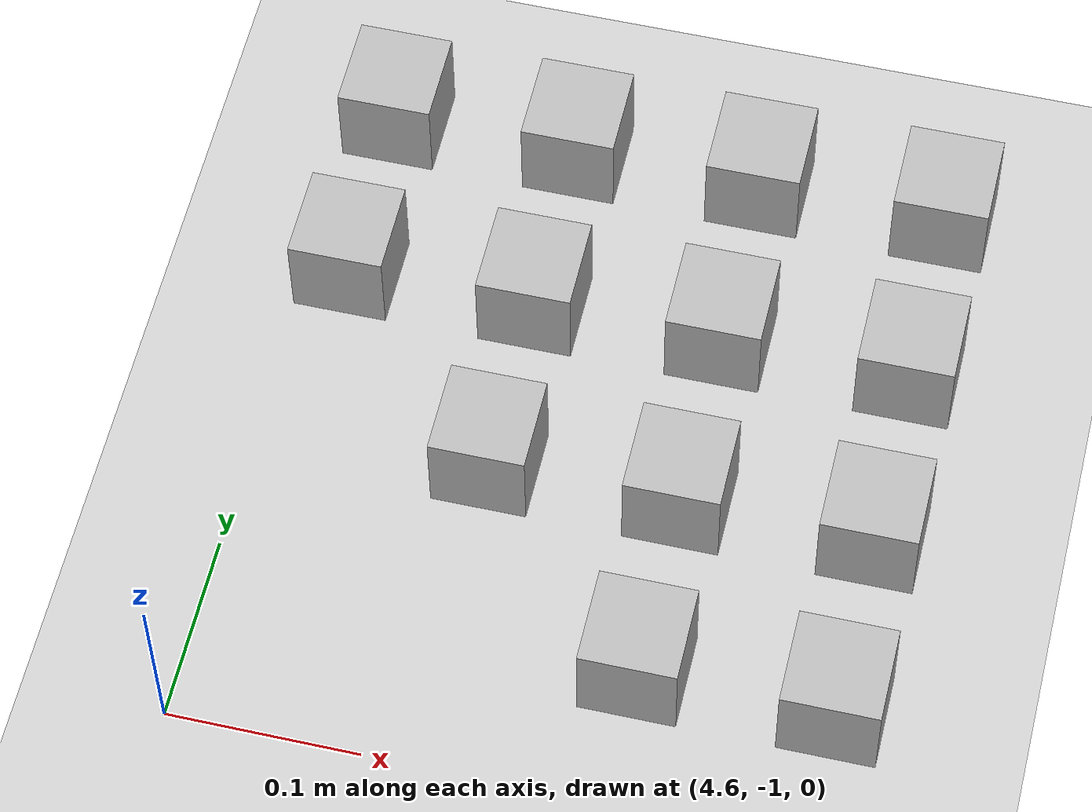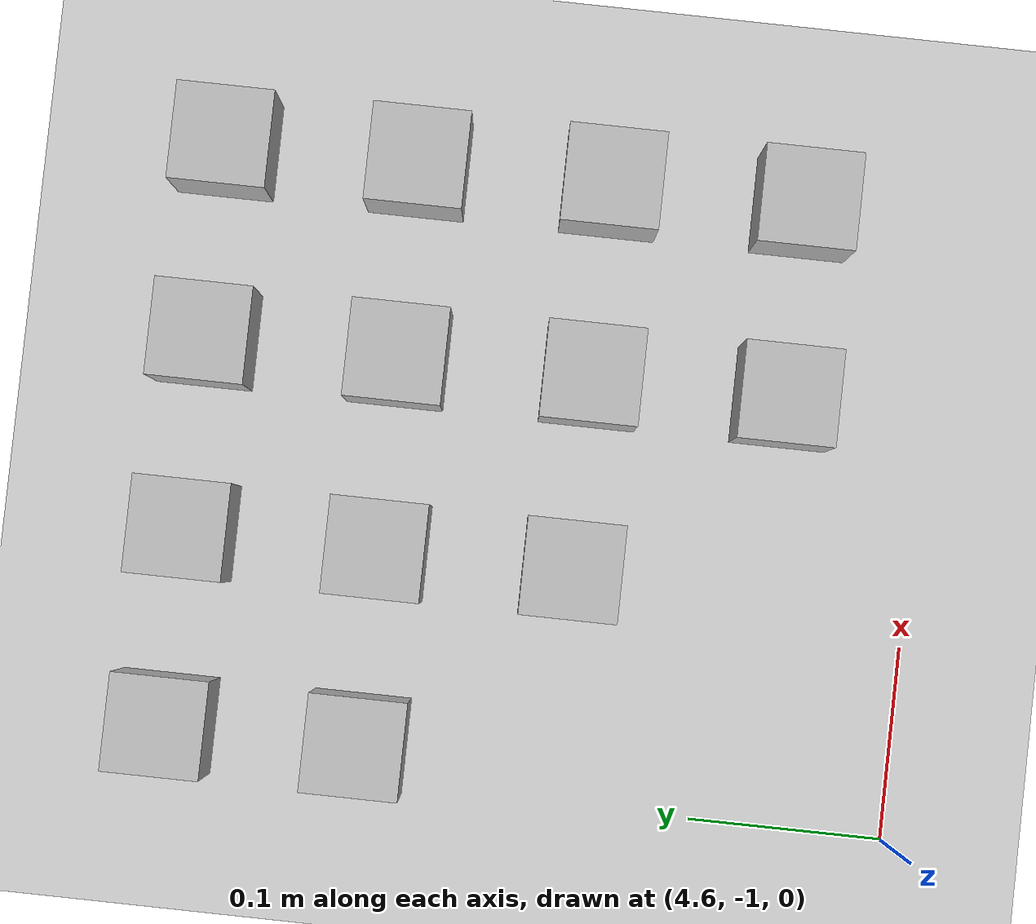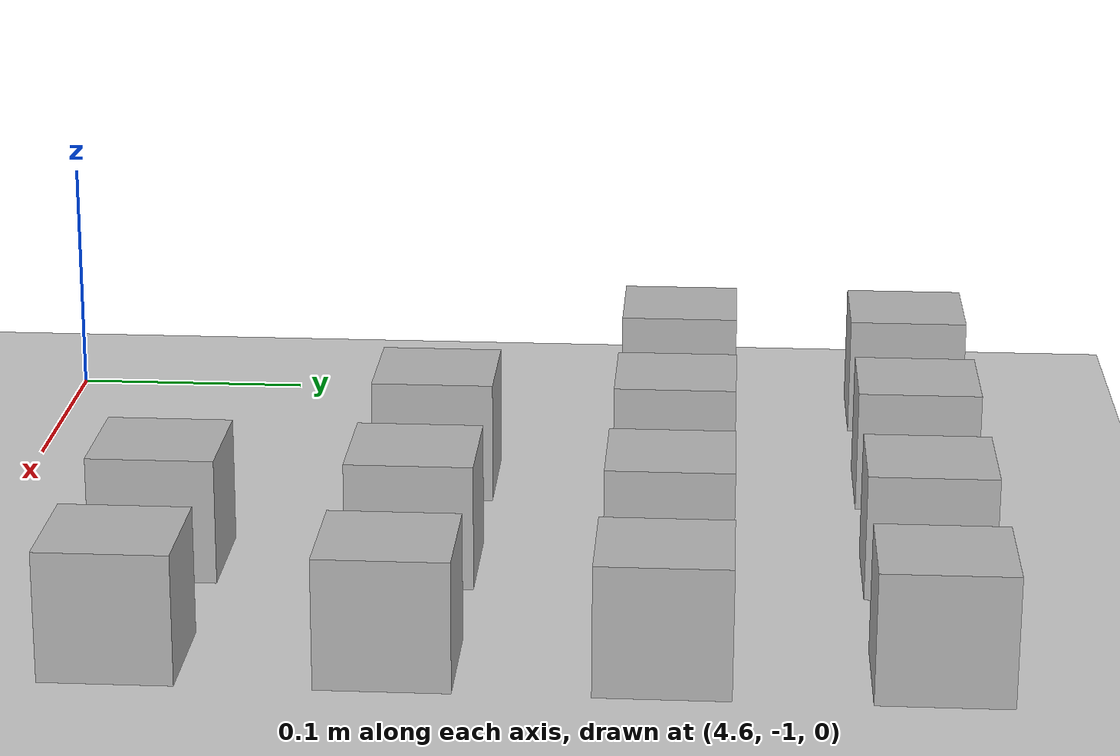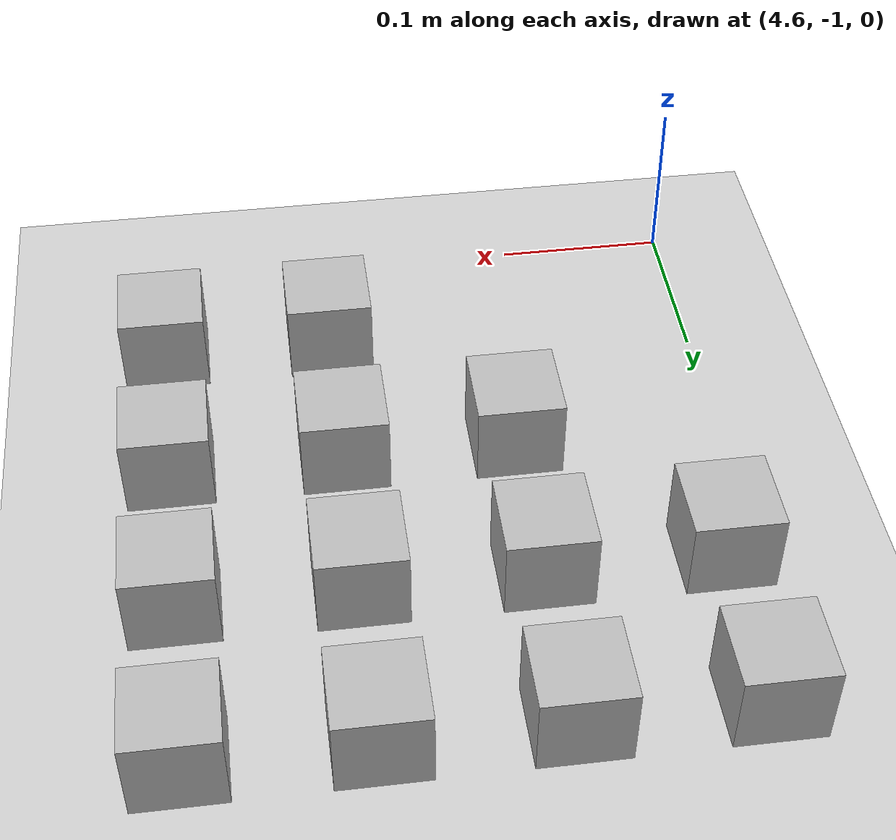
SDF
<sdf version="1.6">
 <world name="default">
  <model name="ground_plane">
   <static>1</static>
   <link name="link">
    <collision name="collision">
     <geometry><plane><normal>0 0 1</normal><size>100 100</size></plane></geometry>
     <surface><friction><ode><mu>100</mu><mu2>50</mu2></ode></friction></surface>
    </collision>
    <visual name="visual">
     <cast_shadows>0</cast_shadows>
     <geometry><plane><normal>0 0 1</normal><size>100 100</size></plane></geometry>
     <material>
      <script><uri>file://media/materials/scripts/gazebo.material</uri><name>Gazebo/Grey</name></script>
     </material>
    </visual>
   </link>
  </model>
  <model name="at14">
   <static>0</static>
   <link name="link">
    <inertial>
     <mass>0.01</mass>
     <inertia><ixx>4e-05</ixx><ixy>0</ixy><ixz>0</ixz><iyy>4e-05</iyy><iyz>0</iyz><izz>4e-05</izz></inertia>
    </inertial>
    <visual name="visual">
     <geometry><box><size>0.05 0.05 0.05</size></box></geometry>
     <material>
      <script>
       <uri>model://at0/materials/scripts</uri>
       <uri>model://at0/materials/textures</uri>
       <name>at0/Diffuse</name>
      </script>
     </material>
    </visual>
    <collision name="collision">
     <geometry><box><size>0.05 0.05 0.05</size></box></geometry>
     <surface><friction><ode><mu>0.8</mu><mu2>0.7</mu2></ode></friction></surface>
    </collision>
   </link>
   <pose>4.82228 -0.92543 0.025 0 -0 0</pose>
  </model>
  <model name="at15">
   <static>0</static>
   <link name="link">
    <inertial>
     <mass>0.01</mass>
     <inertia><ixx>4e-05</ixx><ixy>0</ixy><ixz>0</ixz><iyy>4e-05</iyy><iyz>0</iyz><izz>4e-05</izz></inertia>
    </inertial>
    <visual name="visual">
     <geometry><box><size>0.05 0.05 0.05</size></box></geometry>
     <material>
      <script>
       <uri>model://at0/materials/scripts</uri>
       <uri>model://at0/materials/textures</uri>
       <name>at0/Diffuse</name>
      </script>
     </material>
    </visual>
    <collision name="collision">
     <geometry><box><size>0.05 0.05 0.05</size></box></geometry>
     <surface><friction><ode><mu>0.8</mu><mu2>0.7</mu2></ode></friction></surface>
    </collision>
   </link>
   <pose>4.92228 -0.92543 0.025 0 -0 0</pose>
  </model>
  <model name="at21">
   <static>0</static>
   <link name="link">
    <inertial>
     <mass>0.01</mass>
     <inertia><ixx>4e-05</ixx><ixy>0</ixy><ixz>0</ixz><iyy>4e-05</iyy><iyz>0</iyz><izz>4e-05</izz></inertia>
    </inertial>
    <visual name="visual">
     <geometry><box><size>0.05 0.05 0.05</size></box></geometry>
     <material>
      <script>
       <uri>model://at0/materials/scripts</uri>
       <uri>model://at0/materials/textures</uri>
       <name>at0/Diffuse</name>
      </script>
     </material>
    </visual>
    <collision name="collision">
     <geometry><box><size>0.05 0.05 0.05</size></box></geometry>
     <surface><friction><ode><mu>0.8</mu><mu2>0.7</mu2></ode></friction></surface>
    </collision>
   </link>
   <pose>4.72228 -0.82543 0.025 0 -0 0</pose>
  </model>
  <model name="at22">
   <static>0</static>
   <link name="link">
    <inertial>
     <mass>0.01</mass>
     <inertia><ixx>4e-05</ixx><ixy>0</ixy><ixz>0</ixz><iyy>4e-05</iyy><iyz>0</iyz><izz>4e-05</izz></inertia>
    </inertial>
    <visual name="visual">
     <geometry><box><size>0.05 0.05 0.05</size></box></geometry>
     <material>
      <script>
       <uri>model://at0/materials/scripts</uri>
       <uri>model://at0/materials/textures</uri>
       <name>at0/Diffuse</name>
      </script>
     </material>
    </visual>
    <collision name="collision">
     <geometry><box><size>0.05 0.05 0.05</size></box></geometry>
     <surface><friction><ode><mu>0.8</mu><mu2>0.7</mu2></ode></friction></surface>
    </collision>
   </link>
   <pose>4.82228 -0.82543 0.025 0 -0 0</pose>
  </model>
  <model name="at23">
   <static>0</static>
   <link name="link">
    <inertial>
     <mass>0.01</mass>
     <inertia><ixx>4e-05</ixx><ixy>0</ixy><ixz>0</ixz><iyy>4e-05</iyy><iyz>0</iyz><izz>4e-05</izz></inertia>
    </inertial>
    <visual name="visual">
     <geometry><box><size>0.05 0.05 0.05</size></box></geometry>
     <material>
      <script>
       <uri>model://at0/materials/scripts</uri>
       <uri>model://at0/materials/textures</uri>
       <name>at0/Diffuse</name>
      </script>
     </material>
    </visual>
    <collision name="collision">
     <geometry><box><size>0.05 0.05 0.05</size></box></geometry>
     <surface><friction><ode><mu>0.8</mu><mu2>0.7</mu2></ode></friction></surface>
    </collision>
   </link>
   <pose>4.92228 -0.82543 0.025 0 -0 0</pose>
  </model>
  <model name="at28">
   <static>0</static>
   <link name="link">
    <inertial>
     <mass>0.01</mass>
     <inertia><ixx>4e-05</ixx><ixy>0</ixy><ixz>0</ixz><iyy>4e-05</iyy><iyz>0</iyz><izz>4e-05</izz></inertia>
    </inertial>
    <visual name="visual">
     <geometry><box><size>0.05 0.05 0.05</size></box></geometry>
     <material>
      <script>
       <uri>model://at0/materials/scripts</uri>
       <uri>model://at0/materials/textures</uri>
       <name>at0/Diffuse</name>
      </script>
     </material>
    </visual>
    <collision name="collision">
     <geometry><box><size>0.05 0.05 0.05</size></box></geometry>
     <surface><friction><ode><mu>0.8</mu><mu2>0.7</mu2></ode></friction></surface>
    </collision>
   </link>
   <pose>4.62228 -0.72543 0.025 0 -0 0</pose>
  </model>
  <model name="at29">
   <static>0</static>
   <link name="link">
    <inertial>
     <mass>0.01</mass>
     <inertia><ixx>4e-05</ixx><ixy>0</ixy><ixz>0</ixz><iyy>4e-05</iyy><iyz>0</iyz><izz>4e-05</izz></inertia>
    </inertial>
    <visual name="visual">
     <geometry><box><size>0.05 0.05 0.05</size></box></geometry>
     <material>
      <script>
       <uri>model://at0/materials/scripts</uri>
       <uri>model://at0/materials/textures</uri>
       <name>at0/Diffuse</name>
      </script>
     </material>
    </visual>
    <collision name="collision">
     <geometry><box><size>0.05 0.05 0.05</size></box></geometry>
     <surface><friction><ode><mu>0.8</mu><mu2>0.7</mu2></ode></friction></surface>
    </collision>
   </link>
   <pose>4.72228 -0.72543 0.025 0 -0 0</pose>
  </model>
  <model name="at30">
   <static>0</static>
   <link name="link">
    <inertial>
     <mass>0.01</mass>
     <inertia><ixx>4e-05</ixx><ixy>0</ixy><ixz>0</ixz><iyy>4e-05</iyy><iyz>0</iyz><izz>4e-05</izz></inertia>
    </inertial>
    <visual name="visual">
     <geometry><box><size>0.05 0.05 0.05</size></box></geometry>
     <material>
      <script>
       <uri>model://at0/materials/scripts</uri>
       <uri>model://at0/materials/textures</uri>
       <name>at0/Diffuse</name>
      </script>
     </material>
    </visual>
    <collision name="collision">
     <geometry><box><size>0.05 0.05 0.05</size></box></geometry>
     <surface><friction><ode><mu>0.8</mu><mu2>0.7</mu2></ode></friction></surface>
    </collision>
   </link>
   <pose>4.82228 -0.72543 0.025 0 -0 0</pose>
  </model>
  <model name="at31">
   <static>0</static>
   <link name="link">
    <inertial>
     <mass>0.01</mass>
     <inertia><ixx>4e-05</ixx><ixy>0</ixy><ixz>0</ixz><iyy>4e-05</iyy><iyz>0</iyz><izz>4e-05</izz></inertia>
    </inertial>
    <visual name="visual">
     <geometry><box><size>0.05 0.05 0.05</size></box></geometry>
     <material>
      <script>
       <uri>model://at0/materials/scripts</uri>
       <uri>model://at0/materials/textures</uri>
       <name>at0/Diffuse</name>
      </script>
     </material>
    </visual>
    <collision name="collision">
     <geometry><box><size>0.05 0.05 0.05</size></box></geometry>
     <surface><friction><ode><mu>0.8</mu><mu2>0.7</mu2></ode></friction></surface>
    </collision>
   </link>
   <pose>4.92228 -0.72543 0.025 0 -0 0</pose>
  </model>
  <model name="at36">
   <static>0</static>
   <link name="link">
    <inertial>
     <mass>0.01</mass>
     <inertia><ixx>4e-05</ixx><ixy>0</ixy><ixz>0</ixz><iyy>4e-05</iyy><iyz>0</iyz><izz>4e-05</izz></inertia>
    </inertial>
    <visual name="visual">
     <geometry><box><size>0.05 0.05 0.05</size></box></geometry>
     <material>
      <script>
       <uri>model://at0/materials/scripts</uri>
       <uri>model://at0/materials/textures</uri>
       <name>at0/Diffuse</name>
      </script>
     </material>
    </visual>
    <collision name="collision">
     <geometry><box><size>0.05 0.05 0.05</size></box></geometry>
     <surface><friction><ode><mu>0.8</mu><mu2>0.7</mu2></ode></friction></surface>
    </collision>
   </link>
   <pose>4.62228 -0.62543 0.025 0 -0 0</pose>
  </model>
  <model name="at37">
   <static>0</static>
   <link name="link">
    <inertial>
     <mass>0.01</mass>
     <inertia><ixx>4e-05</ixx><ixy>0</ixy><ixz>0</ixz><iyy>4e-05</iyy><iyz>0</iyz><izz>4e-05</izz></inertia>
    </inertial>
    <visual name="visual">
     <geometry><box><size>0.05 0.05 0.05</size></box></geometry>
     <material>
      <script>
       <uri>model://at0/materials/scripts</uri>
       <uri>model://at0/materials/textures</uri>
       <name>at0/Diffuse</name>
      </script>
     </material>
    </visual>
    <collision name="collision">
     <geometry><box><size>0.05 0.05 0.05</size></box></geometry>
     <surface><friction><ode><mu>0.8</mu><mu2>0.7</mu2></ode></friction></surface>
    </collision>
   </link>
   <pose>4.72228 -0.62543 0.025 0 -0 0</pose>
  </model>
  <model name="at38">
   <static>0</static>
   <link name="link">
    <inertial>
     <mass>0.01</mass>
     <inertia><ixx>4e-05</ixx><ixy>0</ixy><ixz>0</ixz><iyy>4e-05</iyy><iyz>0</iyz><izz>4e-05</izz></inertia>
    </inertial>
    <visual name="visual">
     <geometry><box><size>0.05 0.05 0.05</size></box></geometry>
     <material>
      <script>
       <uri>model://at0/materials/scripts</uri>
       <uri>model://at0/materials/textures</uri>
       <name>at0/Diffuse</name>
      </script>
     </material>
    </visual>
    <collision name="collision">
     <geometry><box><size>0.05 0.05 0.05</size></box></geometry>
     <surface><friction><ode><mu>0.8</mu><mu2>0.7</mu2></ode></friction></surface>
    </collision>
   </link>
   <pose>4.82228 -0.62543 0.025 0 -0 0</pose>
  </model>
  <model name="at39">
   <static>0</static>
   <link name="link">
    <inertial>
     <mass>0.01</mass>
     <inertia><ixx>4e-05</ixx><ixy>0</ixy><ixz>0</ixz><iyy>4e-05</iyy><iyz>0</iyz><izz>4e-05</izz></inertia>
    </inertial>
    <visual name="visual">
     <geometry><box><size>0.05 0.05 0.05</size></box></geometry>
     <material>
      <script>
       <uri>model://at0/materials/scripts</uri>
       <uri>model://at0/materials/textures</uri>
       <name>at0/Diffuse</name>
      </script>
     </material>
    </visual>
    <collision name="collision">
     <geometry><box><size>0.05 0.05 0.05</size></box></geometry>
     <surface><friction><ode><mu>0.8</mu><mu2>0.7</mu2></ode></friction></surface>
    </collision>
   </link>
   <pose>4.92228 -0.62543 0.025 0 -0 0</pose>
  </model>
 </world>
</sdf>
